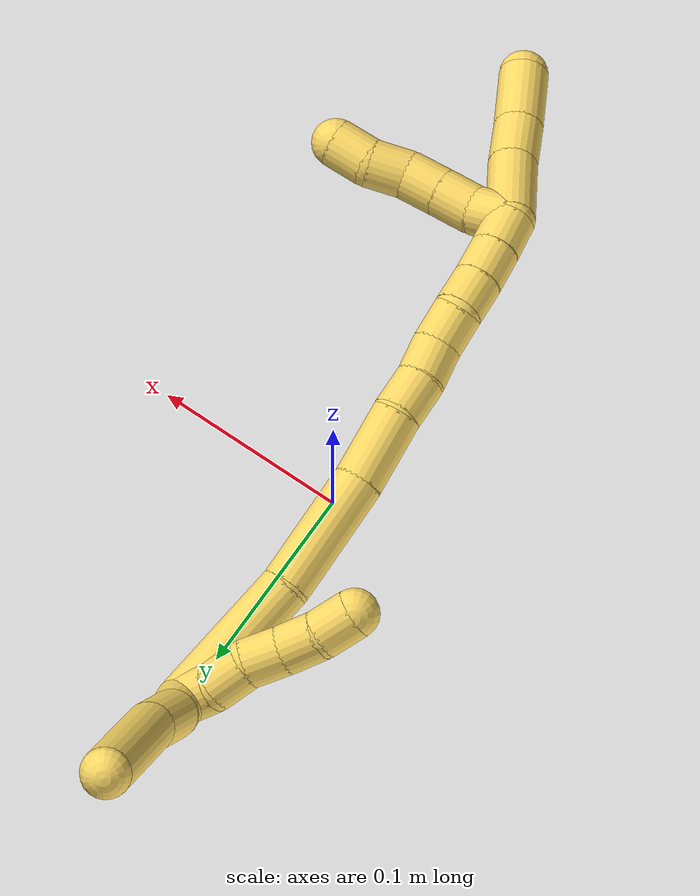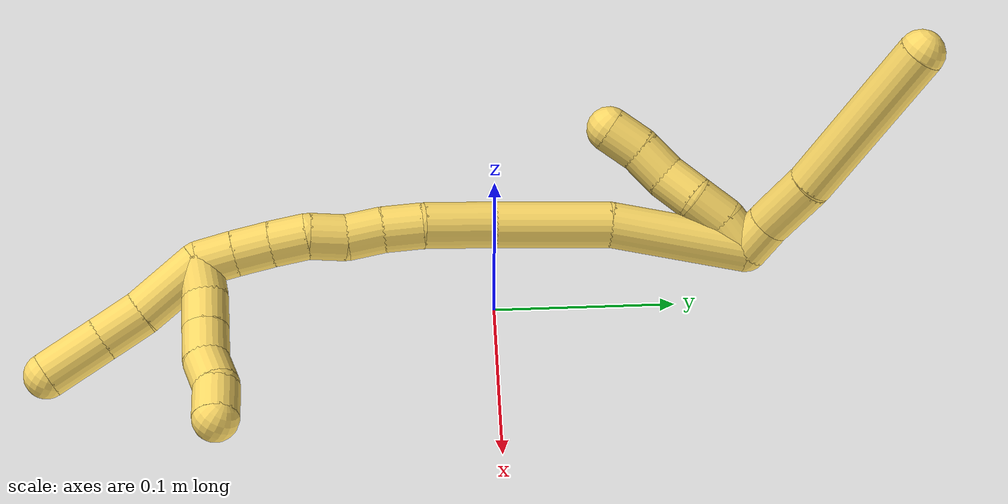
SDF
<sdf version="1.7">
 <world name="default">
  <model name="photoneo_s_sensor">
   <static>1</static>
   <pose>0 0 2 1.57079 1.57079 3.14159</pose>
   <link name="link">
    <inertial><mass>0.1</mass></inertial>
    <sensor name="sensor" type="depth">
     <update_rate>30</update_rate>
     <camera>
      <horizontal_fov>1.22</horizontal_fov>
      <image><width>1920</width><height>1200</height><format>B8G8R8</format></image>
      <clip><near>0.1</near><far>4</far></clip>
      <depth_camera><output>points</output></depth_camera>
     </camera>
     <plugin name="camera_plugin" filename="libgazebo_ros_depth_camera.so">
      <baseline>0.2</baseline>
      <alwaysOn>1</alwaysOn>
      <updateRate>0.0</updateRate>
      <cameraName>camera_ir</cameraName>
      <imageTopicName>/camera/color/image_raw</imageTopicName>
      <cameraInfoTopicName>/camera/color/camera_info</cameraInfoTopicName>
      <depthImageTopicName>/camera/depth/image_raw</depthImageTopicName>
      <depthImageCameraInfoTopicName>/camera/depth/camera_info</depthImageCameraInfoTopicName>
      <pointCloudTopicName>/camera/depth/points</pointCloudTopicName>
      <frameName>fr_optical</frameName>
      <pointCloudCutoff>0.1</pointCloudCutoff>
      <pointCloudCutoffMax>2.0</pointCloudCutoffMax>
      <distortionK1>0</distortionK1>
      <distortionK2>0</distortionK2>
      <distortionK3>0</distortionK3>
      <distortionT1>0</distortionT1>
      <distortionT2>0</distortionT2>
      <CxPrime>0</CxPrime>
      <Cx>0</Cx>
      <Cy>0</Cy>
      <focalLength>0</focalLength>
      <hackBaseline>0</hackBaseline>
     </plugin>
    </sensor>
   </link>
  </model>
  <model name="bin">
   <static>1</static>
   <link name="bottom">
    <collision name="collision-bottom">
     <pose>0 0 -0.01 0 -0 0</pose>
     <geometry><box><size>0.8 0.6 0.02</size></box></geometry>
     <surface>
      <friction><ode><mu>100</mu><mu2>100</mu2></ode></friction>
      <contact><collide_bitmask>65535</collide_bitmask></contact>
     </surface>
    </collision>
   </link>
   <link name="west_wall">
    <collision name="collision-west_wall">
     <pose>-0.41 0 0.1 0 -0 0</pose>
     <geometry><box><size>0.02 0.6 0.2</size></box></geometry>
     <surface>
      <friction><ode><mu>100</mu><mu2>100</mu2></ode></friction>
      <contact><collide_bitmask>65535</collide_bitmask></contact>
     </surface>
    </collision>
   </link>
   <link name="east_wall">
    <collision name="collision-east_wall">
     <pose>0.41 0 0.1 0 -0 0</pose>
     <geometry><box><size>0.02 0.6 0.2</size></box></geometry>
     <surface>
      <friction><ode><mu>100</mu><mu2>100</mu2></ode></friction>
      <contact><collide_bitmask>65535</collide_bitmask></contact>
     </surface>
    </collision>
   </link>
   <link name="south_wall">
    <collision name="collision-south_wall">
     <pose>0 -0.31 0.1 0 -0 0</pose>
     <geometry><box><size>0.8 0.02 0.2</size></box></geometry>
     <surface>
      <friction><ode><mu>100</mu><mu2>100</mu2></ode></friction>
      <contact><collide_bitmask>65535</collide_bitmask></contact>
     </surface>
    </collision>
   </link>
   <link name="north_wall">
    <collision name="collision-north_wall">
     <pose>0 0.31 0.1 0 -0 0</pose>
     <geometry><box><size>0.8 0.02 0.2</size></box></geometry>
     <surface>
      <friction><ode><mu>100</mu><mu2>100</mu2></ode></friction>
      <contact><collide_bitmask>65535</collide_bitmask></contact>
     </surface>
    </collision>
   </link>
  </model>
  <model name="5">
   <static>0</static>
   <link name="5">
    <collision name="collision-cylinder-e_1_2_8">
     <pose>-0.000585 0.001174 -0.009951 -3.02416 -0.058322 0.921207</pose>
     <geometry><cylinder><radius>0.0125</radius><length>0.020075</length></cylinder></geometry>
     <surface>
      <friction><ode><mu>1.16</mu><mu2>1.16</mu2><slip1>0</slip1><slip2>0</slip2></ode></friction>
      <contact><ode><kp>1e+06</kp><kd>1</kd><max_vel>0</max_vel><min_depth>0.001</min_depth></ode></contact>
     </surface>
    </collision>
    <visual name="visual-cylinder-e_1_2_8">
     <pose>-0.000585 0.001174 -0.009951 -3.02416 -0.058322 0.921207</pose>
     <geometry><cylinder><radius>0.0125</radius><length>0.020075</length></cylinder></geometry>
     <material><ambient>1 0.858824 0.4 1</ambient></material>
    </visual>
    <collision name="collision-cylinder-e_2_8_9">
     <pose>-0.005154 0.003104 -0.03678 -3.09683 -0.231593 2.76135</pose>
     <geometry><cylinder><radius>0.0125</radius><length>0.034716</length></cylinder></geometry>
     <surface>
      <friction><ode><mu>1.16</mu><mu2>1.16</mu2><slip1>0</slip1><slip2>0</slip2></ode></friction>
      <contact><ode><kp>1e+06</kp><kd>1</kd><max_vel>0</max_vel><min_depth>0.001</min_depth></ode></contact>
     </surface>
    </collision>
    <visual name="visual-cylinder-e_2_8_9">
     <pose>-0.005154 0.003104 -0.03678 -3.09683 -0.231593 2.76135</pose>
     <geometry><cylinder><radius>0.0125</radius><length>0.034716</length></cylinder></geometry>
     <material><ambient>1 0.858824 0.4 1</ambient></material>
    </visual>
    <collision name="collision-cylinder-e_3_9_6">
     <pose>-0.014152 0.005399 -0.100973 -3.10909 -0.105516 2.54441</pose>
     <geometry><cylinder><radius>0.0125</radius><length>0.09521</length></cylinder></geometry>
     <surface>
      <friction><ode><mu>1.16</mu><mu2>1.16</mu2><slip1>0</slip1><slip2>0</slip2></ode></friction>
      <contact><ode><kp>1e+06</kp><kd>1</kd><max_vel>0</max_vel><min_depth>0.001</min_depth></ode></contact>
     </surface>
    </collision>
    <visual name="visual-cylinder-e_3_9_6">
     <pose>-0.014152 0.005399 -0.100973 -3.10909 -0.105516 2.54441</pose>
     <geometry><cylinder><radius>0.0125</radius><length>0.09521</length></cylinder></geometry>
     <material><ambient>1 0.858824 0.4 1</ambient></material>
    </visual>
    <collision name="collision-cylinder-e_1_2_10">
     <pose>0.006295 -0.006897 -0.003578 2.0494 0.680963 1.05555</pose>
     <geometry><cylinder><radius>0.0125</radius><length>0.02</length></cylinder></geometry>
     <surface>
      <friction><ode><mu>1.16</mu><mu2>1.16</mu2><slip1>0</slip1><slip2>0</slip2></ode></friction>
      <contact><ode><kp>1e+06</kp><kd>1</kd><max_vel>0</max_vel><min_depth>0.001</min_depth></ode></contact>
     </surface>
    </collision>
    <visual name="visual-cylinder-e_1_2_10">
     <pose>0.006295 -0.006897 -0.003578 2.0494 0.680963 1.05555</pose>
     <geometry><cylinder><radius>0.0125</radius><length>0.02</length></cylinder></geometry>
     <material><ambient>1 0.858824 0.4 1</ambient></material>
    </visual>
    <collision name="collision-cylinder-e_2_10_11">
     <pose>0.018058 -0.022089 -0.008296 1.70726 0.578414 0.65763</pose>
     <geometry><cylinder><radius>0.0125</radius><length>0.02</length></cylinder></geometry>
     <surface>
      <friction><ode><mu>1.16</mu><mu2>1.16</mu2><slip1>0</slip1><slip2>0</slip2></ode></friction>
      <contact><ode><kp>1e+06</kp><kd>1</kd><max_vel>0</max_vel><min_depth>0.001</min_depth></ode></contact>
     </surface>
    </collision>
    <visual name="visual-cylinder-e_2_10_11">
     <pose>0.018058 -0.022089 -0.008296 1.70726 0.578414 0.65763</pose>
     <geometry><cylinder><radius>0.0125</radius><length>0.02</length></cylinder></geometry>
     <material><ambient>1 0.858824 0.4 1</ambient></material>
    </visual>
    <collision name="collision-cylinder-e_3_11_12">
     <pose>0.031084 -0.03693 -0.009503 1.58116 0.857091 0.864956</pose>
     <geometry><cylinder><radius>0.0125</radius><length>0.02</length></cylinder></geometry>
     <surface>
      <friction><ode><mu>1.16</mu><mu2>1.16</mu2><slip1>0</slip1><slip2>0</slip2></ode></friction>
      <contact><ode><kp>1e+06</kp><kd>1</kd><max_vel>0</max_vel><min_depth>0.001</min_depth></ode></contact>
     </surface>
    </collision>
    <visual name="visual-cylinder-e_3_11_12">
     <pose>0.031084 -0.03693 -0.009503 1.58116 0.857091 0.864956</pose>
     <geometry><cylinder><radius>0.0125</radius><length>0.02</length></cylinder></geometry>
     <material><ambient>1 0.858824 0.4 1</ambient></material>
    </visual>
    <collision name="collision-cylinder-e_4_12_13">
     <pose>0.045434 -0.050519 -0.011643 1.85703 0.746447 0.964436</pose>
     <geometry><cylinder><radius>0.0125</radius><length>0.02</length></cylinder></geometry>
     <surface>
      <friction><ode><mu>1.16</mu><mu2>1.16</mu2><slip1>0</slip1><slip2>0</slip2></ode></friction>
      <contact><ode><kp>1e+06</kp><kd>1</kd><max_vel>0</max_vel><min_depth>0.001</min_depth></ode></contact>
     </surface>
    </collision>
    <visual name="visual-cylinder-e_4_12_13">
     <pose>0.045434 -0.050519 -0.011643 1.85703 0.746447 0.964436</pose>
     <geometry><cylinder><radius>0.0125</radius><length>0.02</length></cylinder></geometry>
     <material><ambient>1 0.858824 0.4 1</ambient></material>
    </visual>
    <collision name="collision-cylinder-e_5_13_5">
     <pose>0.058241 -0.065534 -0.0142 1.63138 0.645578 0.682942</pose>
     <geometry><cylinder><radius>0.0125</radius><length>0.02</length></cylinder></geometry>
     <surface>
      <friction><ode><mu>1.16</mu><mu2>1.16</mu2><slip1>0</slip1><slip2>0</slip2></ode></friction>
      <contact><ode><kp>1e+06</kp><kd>1</kd><max_vel>0</max_vel><min_depth>0.001</min_depth></ode></contact>
     </surface>
    </collision>
    <visual name="visual-cylinder-e_5_13_5">
     <pose>0.058241 -0.065534 -0.0142 1.63138 0.645578 0.682942</pose>
     <geometry><cylinder><radius>0.0125</radius><length>0.02</length></cylinder></geometry>
     <material><ambient>1 0.858824 0.4 1</ambient></material>
    </visual>
    <collision name="collision-cylinder-e_1_2_14">
     <pose>0.01424 -0.032832 0.011402 1.23654 0.388871 0.278333</pose>
     <geometry><cylinder><radius>0.0125</radius><length>0.075119</length></cylinder></geometry>
     <surface>
      <friction><ode><mu>1.16</mu><mu2>1.16</mu2><slip1>0</slip1><slip2>0</slip2></ode></friction>
      <contact><ode><kp>1e+06</kp><kd>1</kd><max_vel>0</max_vel><min_depth>0.001</min_depth></ode></contact>
     </surface>
    </collision>
    <visual name="visual-cylinder-e_1_2_14">
     <pose>0.01424 -0.032832 0.011402 1.23654 0.388871 0.278333</pose>
     <geometry><cylinder><radius>0.0125</radius><length>0.075119</length></cylinder></geometry>
     <material><ambient>1 0.858824 0.4 1</ambient></material>
    </visual>
    <collision name="collision-cylinder-e_2_14_15">
     <pose>0.036319 -0.093177 0.036302 1.1147 0.250377 0.156551</pose>
     <geometry><cylinder><radius>0.0125</radius><length>0.063267</length></cylinder></geometry>
     <surface>
      <friction><ode><mu>1.16</mu><mu2>1.16</mu2><slip1>0</slip1><slip2>0</slip2></ode></friction>
      <contact><ode><kp>1e+06</kp><kd>1</kd><max_vel>0</max_vel><min_depth>0.001</min_depth></ode></contact>
     </surface>
    </collision>
    <visual name="visual-cylinder-e_2_14_15">
     <pose>0.036319 -0.093177 0.036302 1.1147 0.250377 0.156551</pose>
     <geometry><cylinder><radius>0.0125</radius><length>0.063267</length></cylinder></geometry>
     <material><ambient>1 0.858824 0.4 1</ambient></material>
    </visual>
    <collision name="collision-cylinder-e_3_15_16">
     <pose>0.047454 -0.138214 0.057381 1.16248 0.171038 0.112518</pose>
     <geometry><cylinder><radius>0.0125</radius><length>0.038749</length></cylinder></geometry>
     <surface>
      <friction><ode><mu>1.16</mu><mu2>1.16</mu2><slip1>0</slip1><slip2>0</slip2></ode></friction>
      <contact><ode><kp>1e+06</kp><kd>1</kd><max_vel>0</max_vel><min_depth>0.001</min_depth></ode></contact>
     </surface>
    </collision>
    <visual name="visual-cylinder-e_3_15_16">
     <pose>0.047454 -0.138214 0.057381 1.16248 0.171038 0.112518</pose>
     <geometry><cylinder><radius>0.0125</radius><length>0.038749</length></cylinder></geometry>
     <material><ambient>1 0.858824 0.4 1</ambient></material>
    </visual>
    <collision name="collision-cylinder-e_4_16_17">
     <pose>0.053304 -0.164681 0.070786 0.993689 0.234724 0.127684</pose>
     <geometry><cylinder><radius>0.0125</radius><length>0.02195</length></cylinder></geometry>
     <surface>
      <friction><ode><mu>1.16</mu><mu2>1.16</mu2><slip1>0</slip1><slip2>0</slip2></ode></friction>
      <contact><ode><kp>1e+06</kp><kd>1</kd><max_vel>0</max_vel><min_depth>0.001</min_depth></ode></contact>
     </surface>
    </collision>
    <visual name="visual-cylinder-e_4_16_17">
     <pose>0.053304 -0.164681 0.070786 0.993689 0.234724 0.127684</pose>
     <geometry><cylinder><radius>0.0125</radius><length>0.02195</length></cylinder></geometry>
     <material><ambient>1 0.858824 0.4 1</ambient></material>
    </visual>
    <collision name="collision-cylinder-e_5_17_18">
     <pose>0.05678 -0.182001 0.082377 0.9677 0.090584 0.047627</pose>
     <geometry><cylinder><radius>0.0125</radius><length>0.020421</length></cylinder></geometry>
     <surface>
      <friction><ode><mu>1.16</mu><mu2>1.16</mu2><slip1>0</slip1><slip2>0</slip2></ode></friction>
      <contact><ode><kp>1e+06</kp><kd>1</kd><max_vel>0</max_vel><min_depth>0.001</min_depth></ode></contact>
     </surface>
    </collision>
    <visual name="visual-cylinder-e_5_17_18">
     <pose>0.05678 -0.182001 0.082377 0.9677 0.090584 0.047627</pose>
     <geometry><cylinder><radius>0.0125</radius><length>0.020421</length></cylinder></geometry>
     <material><ambient>1 0.858824 0.4 1</ambient></material>
    </visual>
    <collision name="collision-cylinder-e_6_18_19">
     <pose>0.059719 -0.199677 0.091633 1.21202 0.20009 0.138902</pose>
     <geometry><cylinder><radius>0.0125</radius><length>0.020273</length></cylinder></geometry>
     <surface>
      <friction><ode><mu>1.16</mu><mu2>1.16</mu2><slip1>0</slip1><slip2>0</slip2></ode></friction>
      <contact><ode><kp>1e+06</kp><kd>1</kd><max_vel>0</max_vel><min_depth>0.001</min_depth></ode></contact>
     </surface>
    </collision>
    <visual name="visual-cylinder-e_6_18_19">
     <pose>0.059719 -0.199677 0.091633 1.21202 0.20009 0.138902</pose>
     <geometry><cylinder><radius>0.0125</radius><length>0.020273</length></cylinder></geometry>
     <material><ambient>1 0.858824 0.4 1</ambient></material>
    </visual>
    <collision name="collision-cylinder-e_7_19_20">
     <pose>0.063669 -0.216534 0.101442 0.874078 0.194048 0.090876</pose>
     <geometry><cylinder><radius>0.0125</radius><length>0.020077</length></cylinder></geometry>
     <surface>
      <friction><ode><mu>1.16</mu><mu2>1.16</mu2><slip1>0</slip1><slip2>0</slip2></ode></friction>
      <contact><ode><kp>1e+06</kp><kd>1</kd><max_vel>0</max_vel><min_depth>0.001</min_depth></ode></contact>
     </surface>
    </collision>
    <visual name="visual-cylinder-e_7_19_20">
     <pose>0.063669 -0.216534 0.101442 0.874078 0.194048 0.090876</pose>
     <geometry><cylinder><radius>0.0125</radius><length>0.020077</length></cylinder></geometry>
     <material><ambient>1 0.858824 0.4 1</ambient></material>
    </visual>
    <collision name="collision-cylinder-e_8_20_21">
     <pose>0.067071 -0.231677 0.114178 0.869024 0.146437 0.068056</pose>
     <geometry><cylinder><radius>0.0125</radius><length>0.020088</length></cylinder></geometry>
     <surface>
      <friction><ode><mu>1.16</mu><mu2>1.16</mu2><slip1>0</slip1><slip2>0</slip2></ode></friction>
      <contact><ode><kp>1e+06</kp><kd>1</kd><max_vel>0</max_vel><min_depth>0.001</min_depth></ode></contact>
     </surface>
    </collision>
    <visual name="visual-cylinder-e_8_20_21">
     <pose>0.067071 -0.231677 0.114178 0.869024 0.146437 0.068056</pose>
     <geometry><cylinder><radius>0.0125</radius><length>0.020088</length></cylinder></geometry>
     <material><ambient>1 0.858824 0.4 1</ambient></material>
    </visual>
    <collision name="collision-cylinder-e_9_21_1">
     <pose>0.069656 -0.246789 0.127128 0.855577 0.11193 0.051076</pose>
     <geometry><cylinder><radius>0.0125</radius><length>0.020056</length></cylinder></geometry>
     <surface>
      <friction><ode><mu>1.16</mu><mu2>1.16</mu2><slip1>0</slip1><slip2>0</slip2></ode></friction>
      <contact><ode><kp>1e+06</kp><kd>1</kd><max_vel>0</max_vel><min_depth>0.001</min_depth></ode></contact>
     </surface>
    </collision>
    <visual name="visual-cylinder-e_9_21_1">
     <pose>0.069656 -0.246789 0.127128 0.855577 0.11193 0.051076</pose>
     <geometry><cylinder><radius>0.0125</radius><length>0.020056</length></cylinder></geometry>
     <material><ambient>1 0.858824 0.4 1</ambient></material>
    </visual>
    <collision name="collision-cylinder-e_1_1_22">
     <pose>0.061825 -0.252796 0.137855 -0.347071 -1.10874 0.216221</pose>
     <geometry><cylinder><radius>0.0125</radius><length>0.02</length></cylinder></geometry>
     <surface>
      <friction><ode><mu>1.16</mu><mu2>1.16</mu2><slip1>0</slip1><slip2>0</slip2></ode></friction>
      <contact><ode><kp>1e+06</kp><kd>1</kd><max_vel>0</max_vel><min_depth>0.001</min_depth></ode></contact>
     </surface>
    </collision>
    <visual name="visual-cylinder-e_1_1_22">
     <pose>0.061825 -0.252796 0.137855 -0.347071 -1.10874 0.216221</pose>
     <geometry><cylinder><radius>0.0125</radius><length>0.02</length></cylinder></geometry>
     <material><ambient>1 0.858824 0.4 1</ambient></material>
    </visual>
    <collision name="collision-cylinder-e_2_22_23">
     <pose>0.043467 -0.25207 0.145347 0.235009 -1.22463 -0.165449</pose>
     <geometry><cylinder><radius>0.0125</radius><length>0.02</length></cylinder></geometry>
     <surface>
      <friction><ode><mu>1.16</mu><mu2>1.16</mu2><slip1>0</slip1><slip2>0</slip2></ode></friction>
      <contact><ode><kp>1e+06</kp><kd>1</kd><max_vel>0</max_vel><min_depth>0.001</min_depth></ode></contact>
     </surface>
    </collision>
    <visual name="visual-cylinder-e_2_22_23">
     <pose>0.043467 -0.25207 0.145347 0.235009 -1.22463 -0.165449</pose>
     <geometry><cylinder><radius>0.0125</radius><length>0.02</length></cylinder></geometry>
     <material><ambient>1 0.858824 0.4 1</ambient></material>
    </visual>
    <collision name="collision-cylinder-e_3_23_24">
     <pose>0.024569 -0.25365 0.151696 0.253503 -1.25034 -0.183434</pose>
     <geometry><cylinder><radius>0.0125</radius><length>0.02</length></cylinder></geometry>
     <surface>
      <friction><ode><mu>1.16</mu><mu2>1.16</mu2><slip1>0</slip1><slip2>0</slip2></ode></friction>
      <contact><ode><kp>1e+06</kp><kd>1</kd><max_vel>0</max_vel><min_depth>0.001</min_depth></ode></contact>
     </surface>
    </collision>
    <visual name="visual-cylinder-e_3_23_24">
     <pose>0.024569 -0.25365 0.151696 0.253503 -1.25034 -0.183434</pose>
     <geometry><cylinder><radius>0.0125</radius><length>0.02</length></cylinder></geometry>
     <material><ambient>1 0.858824 0.4 1</ambient></material>
    </visual>
    <collision name="collision-cylinder-e_4_24_25">
     <pose>0.005088 -0.254002 0.154771 -1.51136 -1.52689 1.46759</pose>
     <geometry><cylinder><radius>0.0125</radius><length>0.02</length></cylinder></geometry>
     <surface>
      <friction><ode><mu>1.16</mu><mu2>1.16</mu2><slip1>0</slip1><slip2>0</slip2></ode></friction>
      <contact><ode><kp>1e+06</kp><kd>1</kd><max_vel>0</max_vel><min_depth>0.001</min_depth></ode></contact>
     </surface>
    </collision>
    <visual name="visual-cylinder-e_4_24_25">
     <pose>0.005088 -0.254002 0.154771 -1.51136 -1.52689 1.46759</pose>
     <geometry><cylinder><radius>0.0125</radius><length>0.02</length></cylinder></geometry>
     <material><ambient>1 0.858824 0.4 1</ambient></material>
    </visual>
    <collision name="collision-cylinder-e_5_25_4">
     <pose>-0.014427 -0.255031 0.15747 0.501987 -1.26101 -0.370007</pose>
     <geometry><cylinder><radius>0.0125</radius><length>0.02</length></cylinder></geometry>
     <surface>
      <friction><ode><mu>1.16</mu><mu2>1.16</mu2><slip1>0</slip1><slip2>0</slip2></ode></friction>
      <contact><ode><kp>1e+06</kp><kd>1</kd><max_vel>0</max_vel><min_depth>0.001</min_depth></ode></contact>
     </surface>
    </collision>
    <visual name="visual-cylinder-e_5_25_4">
     <pose>-0.014427 -0.255031 0.15747 0.501987 -1.26101 -0.370007</pose>
     <geometry><cylinder><radius>0.0125</radius><length>0.02</length></cylinder></geometry>
     <material><ambient>1 0.858824 0.4 1</ambient></material>
    </visual>
    <collision name="collision-cylinder-e_1_1_26">
     <pose>0.066783 -0.264755 0.150204 0.563129 -0.201367 -0.058426</pose>
     <geometry><cylinder><radius>0.0125</radius><length>0.039929</length></cylinder></geometry>
     <surface>
      <friction><ode><mu>1.16</mu><mu2>1.16</mu2><slip1>0</slip1><slip2>0</slip2></ode></friction>
      <contact><ode><kp>1e+06</kp><kd>1</kd><max_vel>0</max_vel><min_depth>0.001</min_depth></ode></contact>
     </surface>
    </collision>
    <visual name="visual-cylinder-e_1_1_26">
     <pose>0.066783 -0.264755 0.150204 0.563129 -0.201367 -0.058426</pose>
     <geometry><cylinder><radius>0.0125</radius><length>0.039929</length></cylinder></geometry>
     <material><ambient>1 0.858824 0.4 1</ambient></material>
    </visual>
    <collision name="collision-cylinder-e_2_26_27">
     <pose>0.060896 -0.28311 0.176506 0.681171 -0.149588 -0.0531</pose>
     <geometry><cylinder><radius>0.0125</radius><length>0.025416</length></cylinder></geometry>
     <surface>
      <friction><ode><mu>1.16</mu><mu2>1.16</mu2><slip1>0</slip1><slip2>0</slip2></ode></friction>
      <contact><ode><kp>1e+06</kp><kd>1</kd><max_vel>0</max_vel><min_depth>0.001</min_depth></ode></contact>
     </surface>
    </collision>
    <visual name="visual-cylinder-e_2_26_27">
     <pose>0.060896 -0.28311 0.176506 0.681171 -0.149588 -0.0531</pose>
     <geometry><cylinder><radius>0.0125</radius><length>0.025416</length></cylinder></geometry>
     <material><ambient>1 0.858824 0.4 1</ambient></material>
    </visual>
    <collision name="collision-cylinder-e_3_27_3">
     <pose>0.055756 -0.302227 0.199081 0.71851 -0.188487 -0.070967</pose>
     <geometry><cylinder><radius>0.0125</radius><length>0.034655</length></cylinder></geometry>
     <surface>
      <friction><ode><mu>1.16</mu><mu2>1.16</mu2><slip1>0</slip1><slip2>0</slip2></ode></friction>
      <contact><ode><kp>1e+06</kp><kd>1</kd><max_vel>0</max_vel><min_depth>0.001</min_depth></ode></contact>
     </surface>
    </collision>
    <visual name="visual-cylinder-e_3_27_3">
     <pose>0.055756 -0.302227 0.199081 0.71851 -0.188487 -0.070967</pose>
     <geometry><cylinder><radius>0.0125</radius><length>0.034655</length></cylinder></geometry>
     <material><ambient>1 0.858824 0.4 1</ambient></material>
    </visual>
    <collision name="collision-sphere-3">
     <pose>0.052509 -0.313431 0.211894 0 -0 0</pose>
     <geometry><sphere><radius>0.0125</radius></sphere></geometry>
     <surface>
      <friction><ode><mu>1.16</mu><mu2>1.16</mu2><slip1>0</slip1><slip2>0</slip2></ode></friction>
      <contact><ode><kp>1e+06</kp><kd>1</kd><max_vel>0</max_vel><min_depth>0.001</min_depth></ode></contact>
     </surface>
    </collision>
    <visual name="visual-sphere-3">
     <pose>0.052509 -0.313431 0.211894 0 -0 0</pose>
     <geometry><sphere><radius>0.0125</radius></sphere></geometry>
     <material><ambient>1 0.858824 0.4 1</ambient></material>
    </visual>
    <collision name="collision-sphere-27">
     <pose>0.059002 -0.291023 0.186268 0 -0 0</pose>
     <geometry><sphere><radius>0.0125</radius></sphere></geometry>
     <surface>
      <friction><ode><mu>1.16</mu><mu2>1.16</mu2><slip1>0</slip1><slip2>0</slip2></ode></friction>
      <contact><ode><kp>1e+06</kp><kd>1</kd><max_vel>0</max_vel><min_depth>0.001</min_depth></ode></contact>
     </surface>
    </collision>
    <visual name="visual-sphere-27">
     <pose>0.059002 -0.291023 0.186268 0 -0 0</pose>
     <geometry><sphere><radius>0.0125</radius></sphere></geometry>
     <material><ambient>1 0.858824 0.4 1</ambient></material>
    </visual>
    <collision name="collision-sphere-26">
     <pose>0.06279 -0.275197 0.166744 0 -0 0</pose>
     <geometry><sphere><radius>0.0125</radius></sphere></geometry>
     <surface>
      <friction><ode><mu>1.16</mu><mu2>1.16</mu2><slip1>0</slip1><slip2>0</slip2></ode></friction>
      <contact><ode><kp>1e+06</kp><kd>1</kd><max_vel>0</max_vel><min_depth>0.001</min_depth></ode></contact>
     </surface>
    </collision>
    <visual name="visual-sphere-26">
     <pose>0.06279 -0.275197 0.166744 0 -0 0</pose>
     <geometry><sphere><radius>0.0125</radius></sphere></geometry>
     <material><ambient>1 0.858824 0.4 1</ambient></material>
    </visual>
    <collision name="collision-sphere-4">
     <pose>-0.023951 -0.256498 0.160142 0 -0 0</pose>
     <geometry><sphere><radius>0.0125</radius></sphere></geometry>
     <surface>
      <friction><ode><mu>1.16</mu><mu2>1.16</mu2><slip1>0</slip1><slip2>0</slip2></ode></friction>
      <contact><ode><kp>1e+06</kp><kd>1</kd><max_vel>0</max_vel><min_depth>0.001</min_depth></ode></contact>
     </surface>
    </collision>
    <visual name="visual-sphere-4">
     <pose>-0.023951 -0.256498 0.160142 0 -0 0</pose>
     <geometry><sphere><radius>0.0125</radius></sphere></geometry>
     <material><ambient>1 0.858824 0.4 1</ambient></material>
    </visual>
    <collision name="collision-sphere-25">
     <pose>-0.004903 -0.253564 0.154797 0 -0 0</pose>
     <geometry><sphere><radius>0.0125</radius></sphere></geometry>
     <surface>
      <friction><ode><mu>1.16</mu><mu2>1.16</mu2><slip1>0</slip1><slip2>0</slip2></ode></friction>
      <contact><ode><kp>1e+06</kp><kd>1</kd><max_vel>0</max_vel><min_depth>0.001</min_depth></ode></contact>
     </surface>
    </collision>
    <visual name="visual-sphere-25">
     <pose>-0.004903 -0.253564 0.154797 0 -0 0</pose>
     <geometry><sphere><radius>0.0125</radius></sphere></geometry>
     <material><ambient>1 0.858824 0.4 1</ambient></material>
    </visual>
    <collision name="collision-sphere-24">
     <pose>0.015078 -0.25444 0.154745 0 -0 0</pose>
     <geometry><sphere><radius>0.0125</radius></sphere></geometry>
     <surface>
      <friction><ode><mu>1.16</mu><mu2>1.16</mu2><slip1>0</slip1><slip2>0</slip2></ode></friction>
      <contact><ode><kp>1e+06</kp><kd>1</kd><max_vel>0</max_vel><min_depth>0.001</min_depth></ode></contact>
     </surface>
    </collision>
    <visual name="visual-sphere-24">
     <pose>0.015078 -0.25444 0.154745 0 -0 0</pose>
     <geometry><sphere><radius>0.0125</radius></sphere></geometry>
     <material><ambient>1 0.858824 0.4 1</ambient></material>
    </visual>
    <collision name="collision-sphere-23">
     <pose>0.03406 -0.25286 0.148647 0 -0 0</pose>
     <geometry><sphere><radius>0.0125</radius></sphere></geometry>
     <surface>
      <friction><ode><mu>1.16</mu><mu2>1.16</mu2><slip1>0</slip1><slip2>0</slip2></ode></friction>
      <contact><ode><kp>1e+06</kp><kd>1</kd><max_vel>0</max_vel><min_depth>0.001</min_depth></ode></contact>
     </surface>
    </collision>
    <visual name="visual-sphere-23">
     <pose>0.03406 -0.25286 0.148647 0 -0 0</pose>
     <geometry><sphere><radius>0.0125</radius></sphere></geometry>
     <material><ambient>1 0.858824 0.4 1</ambient></material>
    </visual>
    <collision name="collision-sphere-22">
     <pose>0.052874 -0.25128 0.142047 0 -0 0</pose>
     <geometry><sphere><radius>0.0125</radius></sphere></geometry>
     <surface>
      <friction><ode><mu>1.16</mu><mu2>1.16</mu2><slip1>0</slip1><slip2>0</slip2></ode></friction>
      <contact><ode><kp>1e+06</kp><kd>1</kd><max_vel>0</max_vel><min_depth>0.001</min_depth></ode></contact>
     </surface>
    </collision>
    <visual name="visual-sphere-22">
     <pose>0.052874 -0.25128 0.142047 0 -0 0</pose>
     <geometry><sphere><radius>0.0125</radius></sphere></geometry>
     <material><ambient>1 0.858824 0.4 1</ambient></material>
    </visual>
    <collision name="collision-sphere-1">
     <pose>0.070776 -0.254313 0.133663 0 -0 0</pose>
     <geometry><sphere><radius>0.0125</radius></sphere></geometry>
     <surface>
      <friction><ode><mu>1.16</mu><mu2>1.16</mu2><slip1>0</slip1><slip2>0</slip2></ode></friction>
      <contact><ode><kp>1e+06</kp><kd>1</kd><max_vel>0</max_vel><min_depth>0.001</min_depth></ode></contact>
     </surface>
    </collision>
    <visual name="visual-sphere-1">
     <pose>0.070776 -0.254313 0.133663 0 -0 0</pose>
     <geometry><sphere><radius>0.0125</radius></sphere></geometry>
     <material><ambient>1 0.858824 0.4 1</ambient></material>
    </visual>
    <collision name="collision-sphere-21">
     <pose>0.068536 -0.239266 0.120593 0 -0 0</pose>
     <geometry><sphere><radius>0.0125</radius></sphere></geometry>
     <surface>
      <friction><ode><mu>1.16</mu><mu2>1.16</mu2><slip1>0</slip1><slip2>0</slip2></ode></friction>
      <contact><ode><kp>1e+06</kp><kd>1</kd><max_vel>0</max_vel><min_depth>0.001</min_depth></ode></contact>
     </surface>
    </collision>
    <visual name="visual-sphere-21">
     <pose>0.068536 -0.239266 0.120593 0 -0 0</pose>
     <geometry><sphere><radius>0.0125</radius></sphere></geometry>
     <material><ambient>1 0.858824 0.4 1</ambient></material>
    </visual>
    <collision name="collision-sphere-11">
     <pose>0.023525 -0.030384 -0.009435 0 -0 0</pose>
     <geometry><sphere><radius>0.0125</radius></sphere></geometry>
     <surface>
      <friction><ode><mu>1.16</mu><mu2>1.16</mu2><slip1>0</slip1><slip2>0</slip2></ode></friction>
      <contact><ode><kp>1e+06</kp><kd>1</kd><max_vel>0</max_vel><min_depth>0.001</min_depth></ode></contact>
     </surface>
    </collision>
    <visual name="visual-sphere-11">
     <pose>0.023525 -0.030384 -0.009435 0 -0 0</pose>
     <geometry><sphere><radius>0.0125</radius></sphere></geometry>
     <material><ambient>1 0.858824 0.4 1</ambient></material>
    </visual>
    <collision name="collision-sphere-10">
     <pose>0.012591 -0.013793 -0.007156 0 -0 0</pose>
     <geometry><sphere><radius>0.0125</radius></sphere></geometry>
     <surface>
      <friction><ode><mu>1.16</mu><mu2>1.16</mu2><slip1>0</slip1><slip2>0</slip2></ode></friction>
      <contact><ode><kp>1e+06</kp><kd>1</kd><max_vel>0</max_vel><min_depth>0.001</min_depth></ode></contact>
     </surface>
    </collision>
    <visual name="visual-sphere-10">
     <pose>0.012591 -0.013793 -0.007156 0 -0 0</pose>
     <geometry><sphere><radius>0.0125</radius></sphere></geometry>
     <material><ambient>1 0.858824 0.4 1</ambient></material>
    </visual>
    <collision name="collision-sphere-6">
     <pose>-0.019166 0.006937 -0.148288 0 -0 0</pose>
     <geometry><sphere><radius>0.0125</radius></sphere></geometry>
     <surface>
      <friction><ode><mu>1.16</mu><mu2>1.16</mu2><slip1>0</slip1><slip2>0</slip2></ode></friction>
      <contact><ode><kp>1e+06</kp><kd>1</kd><max_vel>0</max_vel><min_depth>0.001</min_depth></ode></contact>
     </surface>
    </collision>
    <visual name="visual-sphere-6">
     <pose>-0.019166 0.006937 -0.148288 0 -0 0</pose>
     <geometry><sphere><radius>0.0125</radius></sphere></geometry>
     <material><ambient>1 0.858824 0.4 1</ambient></material>
    </visual>
    <collision name="collision-sphere-9">
     <pose>-0.009138 0.00386 -0.053658 0 -0 0</pose>
     <geometry><sphere><radius>0.0125</radius></sphere></geometry>
     <surface>
      <friction><ode><mu>1.16</mu><mu2>1.16</mu2><slip1>0</slip1><slip2>0</slip2></ode></friction>
      <contact><ode><kp>1e+06</kp><kd>1</kd><max_vel>0</max_vel><min_depth>0.001</min_depth></ode></contact>
     </surface>
    </collision>
    <visual name="visual-sphere-9">
     <pose>-0.009138 0.00386 -0.053658 0 -0 0</pose>
     <geometry><sphere><radius>0.0125</radius></sphere></geometry>
     <material><ambient>1 0.858824 0.4 1</ambient></material>
    </visual>
    <collision name="collision-sphere-2">
     <geometry><sphere><radius>0.0125</radius></sphere></geometry>
     <surface>
      <friction><ode><mu>1.16</mu><mu2>1.16</mu2><slip1>0</slip1><slip2>0</slip2></ode></friction>
      <contact><ode><kp>1e+06</kp><kd>1</kd><max_vel>0</max_vel><min_depth>0.001</min_depth></ode></contact>
     </surface>
    </collision>
    <visual name="visual-sphere-2">
     <geometry><sphere><radius>0.0125</radius></sphere></geometry>
     <material><ambient>1 0.858824 0.4 1</ambient></material>
    </visual>
    <collision name="collision-sphere-19">
     <pose>0.061733 -0.208979 0.095121 0 -0 0</pose>
     <geometry><sphere><radius>0.0125</radius></sphere></geometry>
     <surface>
      <friction><ode><mu>1.16</mu><mu2>1.16</mu2><slip1>0</slip1><slip2>0</slip2></ode></friction>
      <contact><ode><kp>1e+06</kp><kd>1</kd><max_vel>0</max_vel><min_depth>0.001</min_depth></ode></contact>
     </surface>
    </collision>
    <visual name="visual-sphere-19">
     <pose>0.061733 -0.208979 0.095121 0 -0 0</pose>
     <geometry><sphere><radius>0.0125</radius></sphere></geometry>
     <material><ambient>1 0.858824 0.4 1</ambient></material>
    </visual>
    <collision name="collision-sphere-8">
     <pose>-0.00117 0.002348 -0.019903 0 -0 0</pose>
     <geometry><sphere><radius>0.0125</radius></sphere></geometry>
     <surface>
      <friction><ode><mu>1.16</mu><mu2>1.16</mu2><slip1>0</slip1><slip2>0</slip2></ode></friction>
      <contact><ode><kp>1e+06</kp><kd>1</kd><max_vel>0</max_vel><min_depth>0.001</min_depth></ode></contact>
     </surface>
    </collision>
    <visual name="visual-sphere-8">
     <pose>-0.00117 0.002348 -0.019903 0 -0 0</pose>
     <geometry><sphere><radius>0.0125</radius></sphere></geometry>
     <material><ambient>1 0.858824 0.4 1</ambient></material>
    </visual>
    <collision name="collision-sphere-12">
     <pose>0.038644 -0.043476 -0.00957 0 -0 0</pose>
     <geometry><sphere><radius>0.0125</radius></sphere></geometry>
     <surface>
      <friction><ode><mu>1.16</mu><mu2>1.16</mu2><slip1>0</slip1><slip2>0</slip2></ode></friction>
      <contact><ode><kp>1e+06</kp><kd>1</kd><max_vel>0</max_vel><min_depth>0.001</min_depth></ode></contact>
     </surface>
    </collision>
    <visual name="visual-sphere-12">
     <pose>0.038644 -0.043476 -0.00957 0 -0 0</pose>
     <geometry><sphere><radius>0.0125</radius></sphere></geometry>
     <material><ambient>1 0.858824 0.4 1</ambient></material>
    </visual>
    <collision name="collision-sphere-13">
     <pose>0.052224 -0.057561 -0.013716 0 -0 0</pose>
     <geometry><sphere><radius>0.0125</radius></sphere></geometry>
     <surface>
      <friction><ode><mu>1.16</mu><mu2>1.16</mu2><slip1>0</slip1><slip2>0</slip2></ode></friction>
      <contact><ode><kp>1e+06</kp><kd>1</kd><max_vel>0</max_vel><min_depth>0.001</min_depth></ode></contact>
     </surface>
    </collision>
    <visual name="visual-sphere-13">
     <pose>0.052224 -0.057561 -0.013716 0 -0 0</pose>
     <geometry><sphere><radius>0.0125</radius></sphere></geometry>
     <material><ambient>1 0.858824 0.4 1</ambient></material>
    </visual>
    <collision name="collision-sphere-5">
     <pose>0.064258 -0.073507 -0.014683 0 -0 0</pose>
     <geometry><sphere><radius>0.0125</radius></sphere></geometry>
     <surface>
      <friction><ode><mu>1.16</mu><mu2>1.16</mu2><slip1>0</slip1><slip2>0</slip2></ode></friction>
      <contact><ode><kp>1e+06</kp><kd>1</kd><max_vel>0</max_vel><min_depth>0.001</min_depth></ode></contact>
     </surface>
    </collision>
    <visual name="visual-sphere-5">
     <pose>0.064258 -0.073507 -0.014683 0 -0 0</pose>
     <geometry><sphere><radius>0.0125</radius></sphere></geometry>
     <material><ambient>1 0.858824 0.4 1</ambient></material>
    </visual>
    <collision name="collision-sphere-14">
     <pose>0.028481 -0.065663 0.022804 0 -0 0</pose>
     <geometry><sphere><radius>0.0125</radius></sphere></geometry>
     <surface>
      <friction><ode><mu>1.16</mu><mu2>1.16</mu2><slip1>0</slip1><slip2>0</slip2></ode></friction>
      <contact><ode><kp>1e+06</kp><kd>1</kd><max_vel>0</max_vel><min_depth>0.001</min_depth></ode></contact>
     </surface>
    </collision>
    <visual name="visual-sphere-14">
     <pose>0.028481 -0.065663 0.022804 0 -0 0</pose>
     <geometry><sphere><radius>0.0125</radius></sphere></geometry>
     <material><ambient>1 0.858824 0.4 1</ambient></material>
    </visual>
    <collision name="collision-sphere-15">
     <pose>0.044156 -0.120691 0.049801 0 -0 0</pose>
     <geometry><sphere><radius>0.0125</radius></sphere></geometry>
     <surface>
      <friction><ode><mu>1.16</mu><mu2>1.16</mu2><slip1>0</slip1><slip2>0</slip2></ode></friction>
      <contact><ode><kp>1e+06</kp><kd>1</kd><max_vel>0</max_vel><min_depth>0.001</min_depth></ode></contact>
     </surface>
    </collision>
    <visual name="visual-sphere-15">
     <pose>0.044156 -0.120691 0.049801 0 -0 0</pose>
     <geometry><sphere><radius>0.0125</radius></sphere></geometry>
     <material><ambient>1 0.858824 0.4 1</ambient></material>
    </visual>
    <collision name="collision-sphere-16">
     <pose>0.050752 -0.155736 0.064962 0 -0 0</pose>
     <geometry><sphere><radius>0.0125</radius></sphere></geometry>
     <surface>
      <friction><ode><mu>1.16</mu><mu2>1.16</mu2><slip1>0</slip1><slip2>0</slip2></ode></friction>
      <contact><ode><kp>1e+06</kp><kd>1</kd><max_vel>0</max_vel><min_depth>0.001</min_depth></ode></contact>
     </surface>
    </collision>
    <visual name="visual-sphere-16">
     <pose>0.050752 -0.155736 0.064962 0 -0 0</pose>
     <geometry><sphere><radius>0.0125</radius></sphere></geometry>
     <material><ambient>1 0.858824 0.4 1</ambient></material>
    </visual>
    <collision name="collision-sphere-17">
     <pose>0.055857 -0.173626 0.07661 0 -0 0</pose>
     <geometry><sphere><radius>0.0125</radius></sphere></geometry>
     <surface>
      <friction><ode><mu>1.16</mu><mu2>1.16</mu2><slip1>0</slip1><slip2>0</slip2></ode></friction>
      <contact><ode><kp>1e+06</kp><kd>1</kd><max_vel>0</max_vel><min_depth>0.001</min_depth></ode></contact>
     </surface>
    </collision>
    <visual name="visual-sphere-17">
     <pose>0.055857 -0.173626 0.07661 0 -0 0</pose>
     <geometry><sphere><radius>0.0125</radius></sphere></geometry>
     <material><ambient>1 0.858824 0.4 1</ambient></material>
    </visual>
    <collision name="collision-sphere-18">
     <pose>0.057704 -0.190375 0.088145 0 -0 0</pose>
     <geometry><sphere><radius>0.0125</radius></sphere></geometry>
     <surface>
      <friction><ode><mu>1.16</mu><mu2>1.16</mu2><slip1>0</slip1><slip2>0</slip2></ode></friction>
      <contact><ode><kp>1e+06</kp><kd>1</kd><max_vel>0</max_vel><min_depth>0.001</min_depth></ode></contact>
     </surface>
    </collision>
    <visual name="visual-sphere-18">
     <pose>0.057704 -0.190375 0.088145 0 -0 0</pose>
     <geometry><sphere><radius>0.0125</radius></sphere></geometry>
     <material><ambient>1 0.858824 0.4 1</ambient></material>
    </visual>
    <collision name="collision-sphere-20">
     <pose>0.065605 -0.224089 0.107763 0 -0 0</pose>
     <geometry><sphere><radius>0.0125</radius></sphere></geometry>
     <surface>
      <friction><ode><mu>1.16</mu><mu2>1.16</mu2><slip1>0</slip1><slip2>0</slip2></ode></friction>
      <contact><ode><kp>1e+06</kp><kd>1</kd><max_vel>0</max_vel><min_depth>0.001</min_depth></ode></contact>
     </surface>
    </collision>
    <visual name="visual-sphere-20">
     <pose>0.065605 -0.224089 0.107763 0 -0 0</pose>
     <geometry><sphere><radius>0.0125</radius></sphere></geometry>
     <material><ambient>1 0.858824 0.4 1</ambient></material>
    </visual>
    <inertial>
     <pose>0.030627 -0.127511 0.050188 0 -0 0</pose>
     <mass>0.75</mass>
     <inertia><ixx>8.9e-05</ixx><ixy>0</ixy><ixz>0</ixz><iyy>0.000155</iyy><iyz>0</iyz><izz>7.5e-05</izz></inertia>
    </inertial>
   </link>
   <pose>-0.005992 0.137268 0.037127 -2.59035 0.113574 -2.86408</pose>
  </model>
 </world>
</sdf>
